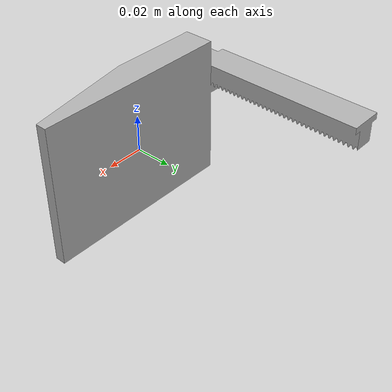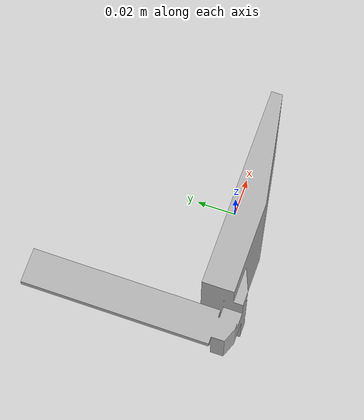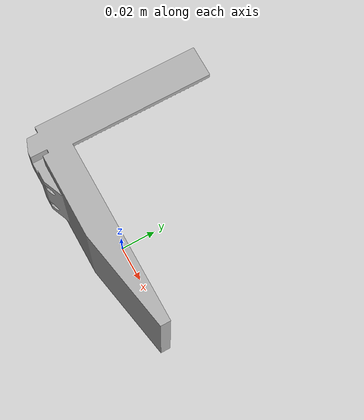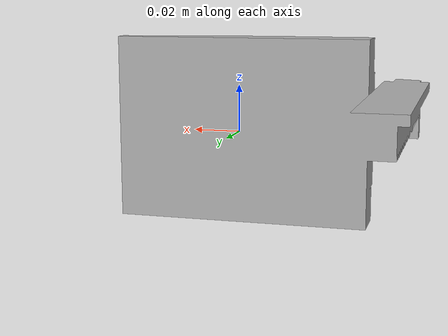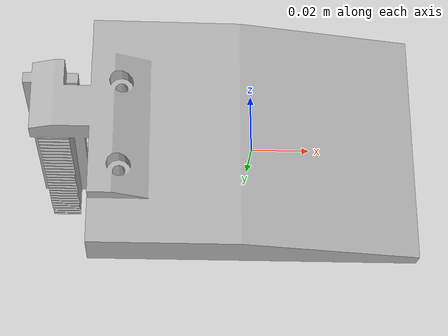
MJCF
<mujoco model="GRIPPER_RIGH">
  <default>
    <default class="visual">
      <geom group="2" type="mesh" contype="0" conaffinity="0"/>
    </default>
    <default class="collision">
      <geom group="3" type="mesh"/>
    </default>
  </default>
  <asset>
    <material name="mtl_GRIPPER_RIGH" specular="0.20000000000000004" shininess="1.0" rgba="0.69803922 0.69803922 0.69803922 1.0"/>
    <mesh file="GRIPPER_RIGH.obj"/>
  </asset>
  <worldbody>
    <body name="GRIPPER_RIGH">
      <geom material="mtl_GRIPPER_RIGH" mesh="GRIPPER_RIGH" class="visual"/>
      <geom mesh="GRIPPER_RIGH" class="collision"/>
    </body>
  </worldbody>
</mujoco>
